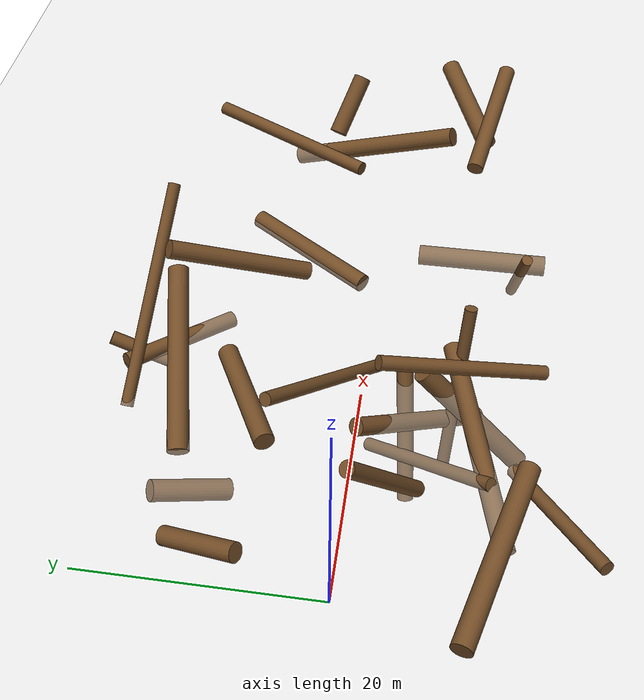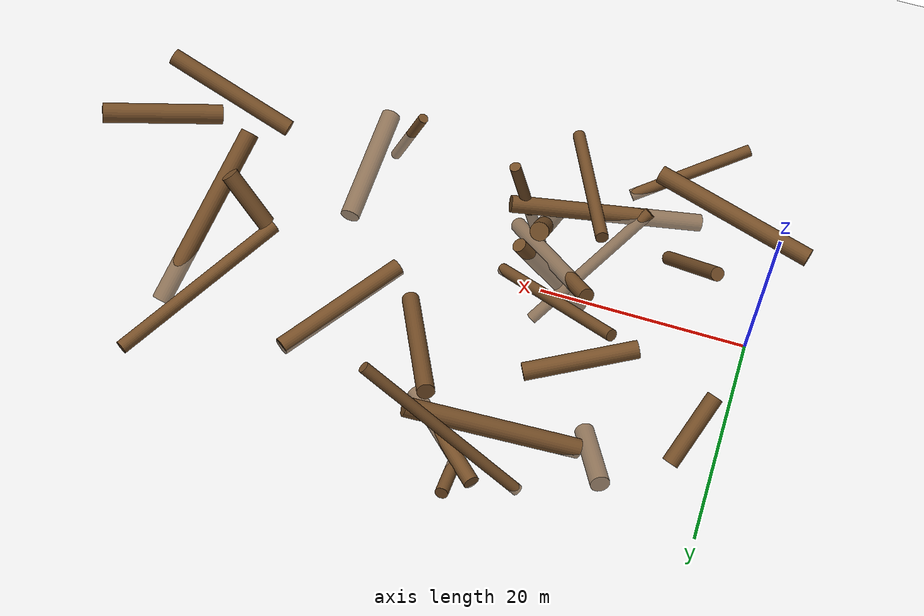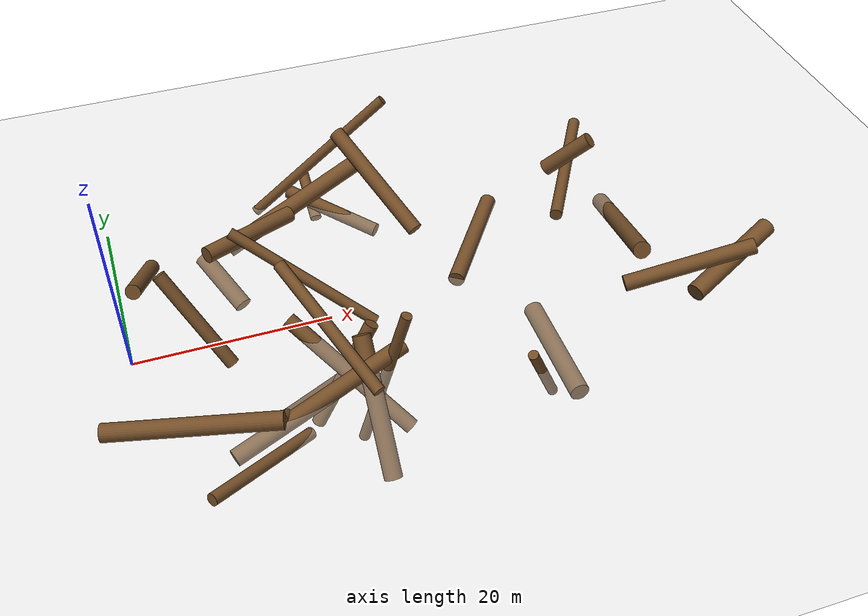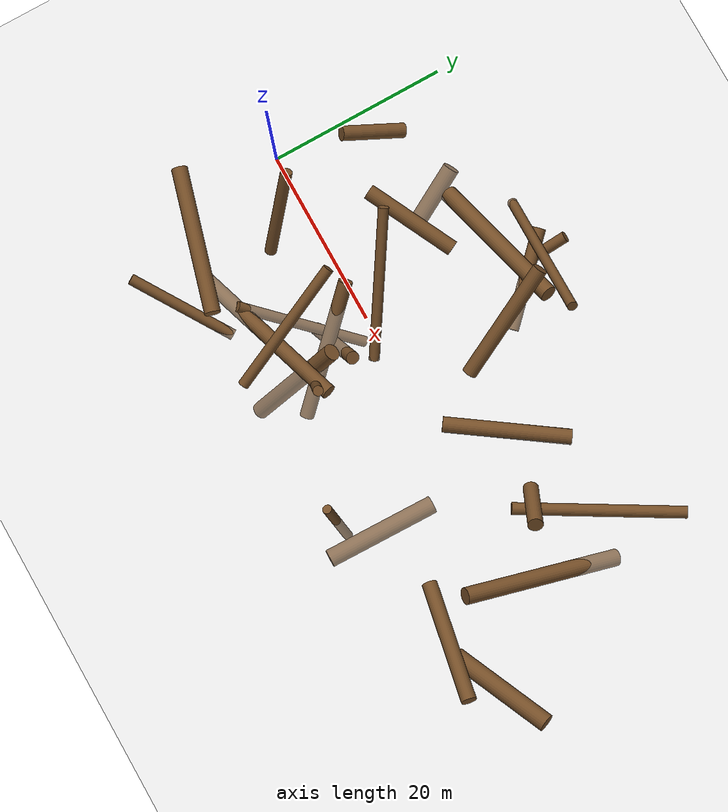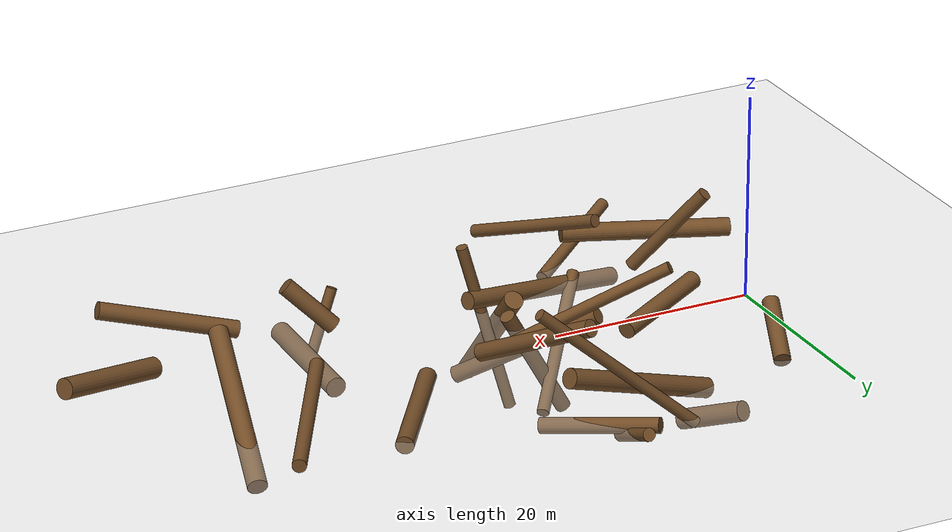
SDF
<sdf version='1.7'>
            <world name='default'>
                <light name='sun' type='directional'>
                <cast_shadows>1</cast_shadows>
                <pose>0 0 10 0 -0 0</pose>
                <diffuse>0.8 0.8 0.8 1</diffuse>
                <specular>0.2 0.2 0.2 1</specular>
                <attenuation>
                    <range>1000</range>
                    <constant>0.9</constant>
                    <linear>0.01</linear>
                    <quadratic>0.001</quadratic>
                </attenuation>
                <direction>-0.5 0.1 -0.9</direction>
                <spot>
                    <inner_angle>0</inner_angle>
                    <outer_angle>0</outer_angle>
                    <falloff>0</falloff>
                </spot>
                </light>
                <model name='ground_plane'>
                <static>1</static>
                <link name='link'>
                    <collision name='collision'>
                    <geometry>
                        <plane>
                        <normal>0 0 1</normal>
                        <size>100 100</size>
                        </plane>
                    </geometry>
                    <surface>
                        <contact>
                        <collide_bitmask>65535</collide_bitmask>
                        <ode/>
                        </contact>
                        <friction>
                        <ode>
                            <mu>100</mu>
                            <mu2>50</mu2>
                        </ode>
                        <torsional>
                            <ode/>
                        </torsional>
                        </friction>
                        <bounce/>
                    </surface>
                    <max_contacts>10</max_contacts>
                    </collision>
                    <visual name='visual'>
                    <cast_shadows>0</cast_shadows>
                    <geometry>
                        <plane>
                        <normal>0 0 1</normal>
                        <size>100 100</size>
                        </plane>
                    </geometry>
                    <material>
                        <script>
                        <uri>file://media/materials/scripts/gazebo.material</uri>
                        <name>Gazebo/Grey</name>
                        </script>
                    </material>
                    </visual>
                    <self_collide>0</self_collide>
                    <enable_wind>0</enable_wind>
                    <kinematic>0</kinematic>
                </link>
                </model>
                <gravity>0 0 -9.8</gravity>
                <magnetic_field>6e-06 2.3e-05 -4.2e-05</magnetic_field>
                <atmosphere type='adiabatic'/>
                <physics type='ode'>
                <max_step_size>0.001</max_step_size>
                <real_time_factor>1</real_time_factor>
                <real_time_update_rate>1000</real_time_update_rate>
                </physics>
                <scene>
                <ambient>0.4 0.4 0.4 1</ambient>
                <background>0.7 0.7 0.7 1</background>
                <shadows>1</shadows>
                </scene>
                <wind/>
                <spherical_coordinates>
                <surface_model>EARTH_WGS84</surface_model>
                <latitude_deg>0</latitude_deg>
                <longitude_deg>0</longitude_deg>
                <elevation>0</elevation>
                <heading_deg>0</heading_deg>
                </spherical_coordinates>
                <model name='cylinder_1'>
      <static>1</static>
      <link name='link'>
        <pose frame=''>0 0 0.1 0 -0 0</pose>
        <collision name='collision_trunk'>
          <pose frame=''>0 0 2 0 -0 0</pose>
          <geometry>
            <cylinder>
              <radius>0.7234155027060548</radius>
              <length>12.953335484031278</length>
            </cylinder>
          </geometry>
        </collision>
        <visual name='trunk'>
          <pose frame=''>0 0 2 0 -0 0</pose>
          <geometry>
            <cylinder>
              <radius>0.7234155027060548</radius>
              <length>12.953335484031278</length>
            </cylinder>
          </geometry>
          <material>
            <script>
              <uri>model://tree_simple/scripts</uri>
              <uri>model://tree_simple/materials/textures</uri>
              <name>TreeSimple/Trunk</name>
            </script>
          </material>
        </visual>
        <self_collide>0</self_collide>
        <kinematic>0</kinematic>
      </link>
      <pose frame=''>21.00890569150392 -3.8540450441753507 -2.452748434934044 179.40193449676843 6.713390166745805 145.38399994907243</pose>
    </model>
    <model name='cylinder_2'>
      <static>1</static>
      <link name='link'>
        <pose frame=''>0 0 0.1 0 -0 0</pose>
        <collision name='collision_trunk'>
          <pose frame=''>0 0 2 0 -0 0</pose>
          <geometry>
            <cylinder>
              <radius>0.5463211008207626</radius>
          <length>19.72344125594885</length>
            </cylinder>
          </geometry>
        </collision>
        <visual name='trunk'>
          <pose frame=''>0 0 2 0 -0 0</pose>
          <geometry>
            <cylinder>
              <radius>0.5463211008207626</radius>
          <length>19.72344125594885</length>
            </cylinder>
          </geometry>
          <material>
            <script>
              <uri>model://tree_simple/scripts</uri>
              <uri>model://tree_simple/materials/textures</uri>
              <name>TreeSimple/Trunk</name>
            </script>
          </material>
        </visual>
        <self_collide>0</self_collide>
        <kinematic>0</kinematic>
      </link>
      <pose frame=''>22.260879774332498 19.228296512568527 4.426406007162969 82.50864635077552 112.84905633284316 39.36330759619164</pose>
    </model>
    <model name='cylinder_3'>
      <static>1</static>
      <link name='link'>
        <pose frame=''>0 0 0.1 0 -0 0</pose>
        <collision name='collision_trunk'>
          <pose frame=''>0 0 2 0 -0 0</pose>
          <geometry>
            <cylinder>
              <radius>0.8548372484809255</radius>
          <length>13.836714031263158</length>
            </cylinder>
          </geometry>
        </collision>
        <visual name='trunk'>
          <pose frame=''>0 0 2 0 -0 0</pose>
          <geometry>
            <cylinder>
              <radius>0.8548372484809255</radius>
          <length>13.836714031263158</length>
            </cylinder>
          </geometry>
          <material>
            <script>
              <uri>model://tree_simple/scripts</uri>
              <uri>model://tree_simple/materials/textures</uri>
              <name>TreeSimple/Trunk</name>
            </script>
          </material>
        </visual>
        <self_collide>0</self_collide>
        <kinematic>0</kinematic>
      </link>
      <pose frame=''>36.64250599308923 5.46268080152149 -0.3139700257588771 10.530556120593776 168.09509218434886 62.689839005031466</pose>
    </model>
    <model name='cylinder_4'>
      <static>1</static>
      <link name='link'>
        <pose frame=''>0 0 0.1 0 -0 0</pose>
        <collision name='collision_trunk'>
          <pose frame=''>0 0 2 0 -0 0</pose>
          <geometry>
            <cylinder>
              <radius>0.8372644615964391</radius>
          <length>10.660292069473956</length>
            </cylinder>
          </geometry>
        </collision>
        <visual name='trunk'>
          <pose frame=''>0 0 2 0 -0 0</pose>
          <geometry>
            <cylinder>
              <radius>0.8372644615964391</radius>
          <length>10.660292069473956</length>
            </cylinder>
          </geometry>
          <material>
            <script>
              <uri>model://tree_simple/scripts</uri>
              <uri>model://tree_simple/materials/textures</uri>
              <name>TreeSimple/Trunk</name>
            </script>
          </material>
        </visual>
        <self_collide>0</self_collide>
        <kinematic>0</kinematic>
      </link>
      <pose frame=''>12.147911141525556 7.806554635595035 5.887780755355497 1.3665843606842576 140.27885040185998 177.78907209854697</pose>
    </model>
    <model name='cylinder_5'>
      <static>1</static>
      <link name='link'>
        <pose frame=''>0 0 0.1 0 -0 0</pose>
        <collision name='collision_trunk'>
          <pose frame=''>0 0 2 0 -0 0</pose>
          <geometry>
            <cylinder>
              <radius>0.8136404943272095</radius>
          <length>13.717900842669058</length>
            </cylinder>
          </geometry>
        </collision>
        <visual name='trunk'>
          <pose frame=''>0 0 2 0 -0 0</pose>
          <geometry>
            <cylinder>
              <radius>0.8136404943272095</radius>
          <length>13.717900842669058</length>
            </cylinder>
          </geometry>
          <material>
            <script>
              <uri>model://tree_simple/scripts</uri>
              <uri>model://tree_simple/materials/textures</uri>
              <name>TreeSimple/Trunk</name>
            </script>
          </material>
        </visual>
        <self_collide>0</self_collide>
        <kinematic>0</kinematic>
      </link>
      <pose frame=''>29.17679377202698 10.214248319443463 5.626295740561044 95.35639657603629 75.56297226275164 148.007070265567</pose>
    </model>
    <model name='cylinder_6'>
      <static>1</static>
      <link name='link'>
        <pose frame=''>0 0 0.1 0 -0 0</pose>
        <collision name='collision_trunk'>
          <pose frame=''>0 0 2 0 -0 0</pose>
          <geometry>
            <cylinder>
              <radius>0.5740356762607992</radius>
          <length>17.074315162700493</length>
            </cylinder>
          </geometry>
        </collision>
        <visual name='trunk'>
          <pose frame=''>0 0 2 0 -0 0</pose>
          <geometry>
            <cylinder>
              <radius>0.5740356762607992</radius>
          <length>17.074315162700493</length>
            </cylinder>
          </geometry>
          <material>
            <script>
              <uri>model://tree_simple/scripts</uri>
              <uri>model://tree_simple/materials/textures</uri>
              <name>TreeSimple/Trunk</name>
            </script>
          </material>
        </visual>
        <self_collide>0</self_collide>
        <kinematic>0</kinematic>
      </link>
      <pose frame=''>19.55518000020775 1.6406785002902282 2.73616901973152 24.67764018920356 88.9408962370074 140.25625328804824</pose>
    </model>
    <model name='cylinder_7'>
      <static>1</static>
      <link name='link'>
        <pose frame=''>0 0 0.1 0 -0 0</pose>
        <collision name='collision_trunk'>
          <pose frame=''>0 0 2 0 -0 0</pose>
          <geometry>
            <cylinder>
              <radius>0.9837575898541788</radius>
          <length>11.848767915918737</length>
            </cylinder>
          </geometry>
        </collision>
        <visual name='trunk'>
          <pose frame=''>0 0 2 0 -0 0</pose>
          <geometry>
            <cylinder>
              <radius>0.9837575898541788</radius>
          <length>11.848767915918737</length>
            </cylinder>
          </geometry>
          <material>
            <script>
              <uri>model://tree_simple/scripts</uri>
              <uri>model://tree_simple/materials/textures</uri>
              <name>TreeSimple/Trunk</name>
            </script>
          </material>
        </visual>
        <self_collide>0</self_collide>
        <kinematic>0</kinematic>
      </link>
      <pose frame=''>59.49698375650257 -7.828150063693542 1.4451402822248314 122.72206881245975 155.31437152318972 94.4577532181646</pose>
    </model>
    <model name='cylinder_8'>
      <static>1</static>
      <link name='link'>
        <pose frame=''>0 0 0.1 0 -0 0</pose>
        <collision name='collision_trunk'>
          <pose frame=''>0 0 2 0 -0 0</pose>
          <geometry>
            <cylinder>
              <radius>0.5554700841788502</radius>
          <length>17.4701878345913</length>
            </cylinder>
          </geometry>
        </collision>
        <visual name='trunk'>
          <pose frame=''>0 0 2 0 -0 0</pose>
          <geometry>
            <cylinder>
              <radius>0.5554700841788502</radius>
          <length>17.4701878345913</length>
            </cylinder>
          </geometry>
          <material>
            <script>
              <uri>model://tree_simple/scripts</uri>
              <uri>model://tree_simple/materials/textures</uri>
              <name>TreeSimple/Trunk</name>
            </script>
          </material>
        </visual>
        <self_collide>0</self_collide>
        <kinematic>0</kinematic>
      </link>
      <pose frame=''>23.561995869229783 -8.262091291026582 0.20650865820312703 157.24008711166493 103.4524652341211 91.54772643628786</pose>
    </model>
    <model name='cylinder_9'>
      <static>1</static>
      <link name='link'>
        <pose frame=''>0 0 0.1 0 -0 0</pose>
        <collision name='collision_trunk'>
          <pose frame=''>0 0 2 0 -0 0</pose>
          <geometry>
            <cylinder>
              <radius>0.9188122893514199</radius>
          <length>18.39236461387587</length>
            </cylinder>
          </geometry>
        </collision>
        <visual name='trunk'>
          <pose frame=''>0 0 2 0 -0 0</pose>
          <geometry>
            <cylinder>
              <radius>0.9188122893514199</radius>
          <length>18.39236461387587</length>
            </cylinder>
          </geometry>
          <material>
            <script>
              <uri>model://tree_simple/scripts</uri>
              <uri>model://tree_simple/materials/textures</uri>
              <name>TreeSimple/Trunk</name>
            </script>
          </material>
        </visual>
        <self_collide>0</self_collide>
        <kinematic>0</kinematic>
      </link>
      <pose frame=''>52.76856698292442 0.6914563560302724 2.0725907446487923 30.30159236913555 66.44669422694471 150.3458502322632</pose>
    </model>
    <model name='cylinder_10'>
      <static>1</static>
      <link name='link'>
        <pose frame=''>0 0 0.1 0 -0 0</pose>
        <collision name='collision_trunk'>
          <pose frame=''>0 0 2 0 -0 0</pose>
          <geometry>
            <cylinder>
              <radius>0.5143967297363823</radius>
          <length>7.49103626970534</length>
            </cylinder>
          </geometry>
        </collision>
        <visual name='trunk'>
          <pose frame=''>0 0 2 0 -0 0</pose>
          <geometry>
            <cylinder>
              <radius>0.5143967297363823</radius>
          <length>7.49103626970534</length>
            </cylinder>
          </geometry>
          <material>
            <script>
              <uri>model://tree_simple/scripts</uri>
              <uri>model://tree_simple/materials/textures</uri>
              <name>TreeSimple/Trunk</name>
            </script>
          </material>
        </visual>
        <self_collide>0</self_collide>
        <kinematic>0</kinematic>
      </link>
      <pose frame=''>36.791145000375245 -13.519492359314329 1.1717389268772642 37.68061656104173 134.68648929647705 37.91556403053179</pose>
    </model>
    <model name='cylinder_11'>
      <static>1</static>
      <link name='link'>
        <pose frame=''>0 0 0.1 0 -0 0</pose>
        <collision name='collision_trunk'>
          <pose frame=''>0 0 2 0 -0 0</pose>
          <geometry>
            <cylinder>
              <radius>0.9341561928620075</radius>
          <length>7.1965019870656715</length>
            </cylinder>
          </geometry>
        </collision>
        <visual name='trunk'>
          <pose frame=''>0 0 2 0 -0 0</pose>
          <geometry>
            <cylinder>
              <radius>0.9341561928620075</radius>
          <length>7.1965019870656715</length>
            </cylinder>
          </geometry>
          <material>
            <script>
              <uri>model://tree_simple/scripts</uri>
              <uri>model://tree_simple/materials/textures</uri>
              <name>TreeSimple/Trunk</name>
            </script>
          </material>
        </visual>
        <self_collide>0</self_collide>
        <kinematic>0</kinematic>
      </link>
      <pose frame=''>11.822282738295794 11.677256509005613 -4.901461953933006 11.45374547860152 81.1860040803771 0.23128169209278626</pose>
    </model>
        <model name='cylinder_12'>
      <static>1</static>
      <link name='link'>
        <pose frame=''>0 0 0.1 0 -0 0</pose>
        <collision name='collision_trunk'>
          <pose frame=''>0 0 2 0 -0 0</pose>
          <geometry>
            <cylinder>
              <radius>0.9346051750616886</radius>
          <length>16.987459908296117</length>
            </cylinder>
          </geometry>
        </collision>
        <visual name='trunk'>
          <pose frame=''>0 0 2 0 -0 0</pose>
          <geometry>
            <cylinder>
              <radius>0.9346051750616886</radius>
          <length>16.987459908296117</length>
            </cylinder>
          </geometry>
          <material>
            <script>
              <uri>model://tree_simple/scripts</uri>
              <uri>model://tree_simple/materials/textures</uri>
              <name>TreeSimple/Trunk</name>
            </script>
          </material>
        </visual>
        <self_collide>0</self_collide>
        <kinematic>0</kinematic>
      </link>
      <pose frame=''>18.124600155564007 15.626248368997267 1.5725274537402054 105.66614568244384 63.435750010407006 155.956871140757</pose>
    </model>
    <model name='cylinder_13'>
      <static>1</static>
      <link name='link'>
        <pose frame=''>0 0 0.1 0 -0 0</pose>
        <collision name='collision_trunk'>
          <pose frame=''>0 0 2 0 -0 0</pose>
          <geometry>
            <cylinder>
              <radius>0.5887399395130926</radius>
          <length>15.923410700129274</length>
            </cylinder>
          </geometry>
        </collision>
        <visual name='trunk'>
          <pose frame=''>0 0 2 0 -0 0</pose>
          <geometry>
            <cylinder>
              <radius>0.5887399395130926</radius>
          <length>15.923410700129274</length>
            </cylinder>
          </geometry>
          <material>
            <script>
              <uri>model://tree_simple/scripts</uri>
              <uri>model://tree_simple/materials/textures</uri>
              <name>TreeSimple/Trunk</name>
            </script>
          </material>
        </visual>
        <self_collide>0</self_collide>
        <kinematic>0</kinematic>
      </link>
      <pose frame=''>15.328521387803855 -7.524950430584848 -2.865817952151349 128.8016254062932 17.808324112637624 101.41964194315048</pose>
    </model>
    <model name='cylinder_14'>
      <static>1</static>
      <link name='link'>
        <pose frame=''>0 0 0.1 0 -0 0</pose>
        <collision name='collision_trunk'>
          <pose frame=''>0 0 2 0 -0 0</pose>
          <geometry>
            <cylinder>
              <radius>0.9634321185642489</radius>
          <length>12.372575877917324</length>
            </cylinder>
          </geometry>
        </collision>
        <visual name='trunk'>
          <pose frame=''>0 0 2 0 -0 0</pose>
          <geometry>
            <cylinder>
              <radius>0.9634321185642489</radius>
          <length>12.372575877917324</length>
            </cylinder>
          </geometry>
          <material>
            <script>
              <uri>model://tree_simple/scripts</uri>
              <uri>model://tree_simple/materials/textures</uri>
              <name>TreeSimple/Trunk</name>
            </script>
          </material>
        </visual>
        <self_collide>0</self_collide>
        <kinematic>0</kinematic>
      </link>
      <pose frame=''>40.507344407221964 -11.790703241551928 -1.9474148703616794 122.04498629502265 39.2436026677681 67.04755523141449</pose>
    </model>
    <model name='cylinder_15'>
      <static>1</static>
      <link name='link'>
        <pose frame=''>0 0 0.1 0 -0 0</pose>
        <collision name='collision_trunk'>
          <pose frame=''>0 0 2 0 -0 0</pose>
          <geometry>
            <cylinder>
              <radius>0.9347863815026418</radius>
          <length>14.522412315882603</length>
            </cylinder>
          </geometry>
        </collision>
        <visual name='trunk'>
          <pose frame=''>0 0 2 0 -0 0</pose>
          <geometry>
            <cylinder>
              <radius>0.9347863815026418</radius>
          <length>14.522412315882603</length>
            </cylinder>
          </geometry>
          <material>
            <script>
              <uri>model://tree_simple/scripts</uri>
              <uri>model://tree_simple/materials/textures</uri>
              <name>TreeSimple/Trunk</name>
            </script>
          </material>
        </visual>
        <self_collide>0</self_collide>
        <kinematic>0</kinematic>
      </link>
      <pose frame=''>21.714453053728786 -8.446535591358245 -2.0182236539156895 140.74613693226587 56.886213009138714 31.85305437194457</pose>
    </model>
    <model name='cylinder_26'>
  <static>1</static>
  <link name='link'>
    <pose frame=''>0 0 0.1 0 -0 0</pose>
    <collision name='collision_trunk'>
      <pose frame=''>0 0 2 0 -0 0</pose>
      <geometry>
        <cylinder>
          <radius>0.8082614125</radius>
          <length>5.7527804043</length>
        </cylinder>
      </geometry>
    </collision>
    <visual name='trunk'>
      <pose frame=''>0 0 2 0 -0 0</pose>
      <geometry>
        <cylinder>
          <radius>0.8082614125</radius>
          <length>5.7527804043</length>
        </cylinder>
      </geometry>
      <material>
        <script>
          <uri>model://tree_simple/scripts</uri>
          <uri>model://tree_simple/materials/textures</uri>
          <name>TreeSimple/Trunk</name>
        </script>
      </material>
    </visual>
    <self_collide>0</self_collide>
    <kinematic>0</kinematic>
  </link>
  <pose frame=''>45.5922126692 5.1973296119 9.3598508087 228.8782799465 261.4639619685 31.6188489367</pose>
</model>

<model name='cylinder_27'>
  <static>1</static>
  <link name='link'>
    <pose frame=''>0 0 0.1 0 -0 0</pose>
    <collision name='collision_trunk'>
      <pose frame=''>0 0 2 0 -0 0</pose>
      <geometry>
        <cylinder>
          <radius>0.5938813088</radius>
          <length>12.4257553003</length>
        </cylinder>
      </geometry>
    </collision>
    <visual name='trunk'>
      <pose frame=''>0 0 2 0 -0 0</pose>
      <geometry>
        <cylinder>
          <radius>0.5938813088</radius>
          <length>12.4257553003</length>
        </cylinder>
      </geometry>
      <material>
        <script>
          <uri>model://tree_simple/scripts</uri>
          <uri>model://tree_simple/materials/textures</uri>
          <name>TreeSimple/Trunk</name>
        </script>
      </material>
    </visual>
    <self_collide>0</self_collide>
    <kinematic>0</kinematic>
  </link>
  <pose frame=''>11.1143236876 -15.4972969867 0.2875334377 2.5885441338 259.4627330534 56.5652363604</pose>
</model>

<model name='cylinder_28'>
  <static>1</static>
  <link name='link'>
    <pose frame=''>0 0 0.1 0 -0 0</pose>
    <collision name='collision_trunk'>
      <pose frame=''>0 0 2 0 -0 0</pose>
      <geometry>
        <cylinder>
          <radius>0.8198904509</radius>
          <length>13.3279643301</length>
        </cylinder>
      </geometry>
    </collision>
    <visual name='trunk'>
      <pose frame=''>0 0 2 0 -0 0</pose>
      <geometry>
        <cylinder>
          <radius>0.8198904509</radius>
          <length>13.3279643301</length>
        </cylinder>
      </geometry>
      <material>
        <script>
          <uri>model://tree_simple/scripts</uri>
          <uri>model://tree_simple/materials/textures</uri>
          <name>TreeSimple/Trunk</name>
        </script>
      </material>
    </visual>
    <self_collide>0</self_collide>
    <kinematic>0</kinematic>
  </link>
  <pose frame=''>56.5566045684 -9.8208134591 5.6745506238 246.0928018572 203.1900472109 148.5765754322</pose>
</model>

<model name='cylinder_29'>
  <static>1</static>
  <link name='link'>
    <pose frame=''>0 0 0.1 0 -0 0</pose>
    <collision name='collision_trunk'>
      <pose frame=''>0 0 2 0 -0 0</pose>
      <geometry>
        <cylinder>
          <radius>0.7426379481</radius>
          <length>11.2525352981</length>
        </cylinder>
      </geometry>
    </collision>
    <visual name='trunk'>
      <pose frame=''>0 0 2 0 -0 0</pose>
      <geometry>
        <cylinder>
          <radius>0.7426379481</radius>
          <length>11.2525352981</length>
        </cylinder>
      </geometry>
      <material>
        <script>
          <uri>model://tree_simple/scripts</uri>
          <uri>model://tree_simple/materials/textures</uri>
          <name>TreeSimple/Trunk</name>
        </script>
      </material>
    </visual>
    <self_collide>0</self_collide>
    <kinematic>0</kinematic>
  </link>
  <pose frame=''>23.0125127207 18.4869310199 -0.1416712246 339.111561029 312.4343096709 341.8397243233</pose>
</model>

<model name='cylinder_30'>
  <static>1</static>
  <link name='link'>
    <pose frame=''>0 0 0.1 0 -0 0</pose>
    <collision name='collision_trunk'>
      <pose frame=''>0 0 2 0 -0 0</pose>
      <geometry>
        <cylinder>
          <radius>0.6468525641</radius>
          <length>10.807517157</length>
        </cylinder>
      </geometry>
    </collision>
    <visual name='trunk'>
      <pose frame=''>0 0 2 0 -0 0</pose>
      <geometry>
        <cylinder>
          <radius>0.6468525641</radius>
          <length>10.807517157</length>
        </cylinder>
      </geometry>
      <material>
        <script>
          <uri>model://tree_simple/scripts</uri>
          <uri>model://tree_simple/materials/textures</uri>
          <name>TreeSimple/Trunk</name>
        </script>
      </material>
    </visual>
    <self_collide>0</self_collide>
    <kinematic>0</kinematic>
  </link>
  <pose frame=''>7.6304654041 -4.0423171289 5.2238907384 62.6113473487 300.9244869567 213.1703035341</pose>
</model>

<model name='cylinder_31'>
  <static>1</static>
  <link name='link'>
    <pose frame=''>0 0 0.1 0 -0 0</pose>
    <collision name='collision_trunk'>
      <pose frame=''>0 0 2 0 -0 0</pose>
      <geometry>
        <cylinder>
          <radius>0.6527792243</radius>
          <length>18.4145687807</length>
        </cylinder>
      </geometry>
    </collision>
    <visual name='trunk'>
      <pose frame=''>0 0 2 0 -0 0</pose>
      <geometry>
        <cylinder>
          <radius>0.6527792243</radius>
          <length>18.4145687807</length>
        </cylinder>
      </geometry>
      <material>
        <script>
          <uri>model://tree_simple/scripts</uri>
          <uri>model://tree_simple/materials/textures</uri>
          <name>TreeSimple/Trunk</name>
        </script>
      </material>
    </visual>
    <self_collide>0</self_collide>
    <kinematic>0</kinematic>
  </link>
  <pose frame=''>51.3119872125 12.8458531123 3.6545190977 236.9893289474 221.7061315814 102.94980269</pose>
</model>

<model name='cylinder_32'>
  <static>1</static>
  <link name='link'>
    <pose frame=''>0 0 0.1 0 -0 0</pose>
    <collision name='collision_trunk'>
      <pose frame=''>0 0 2 0 -0 0</pose>
      <geometry>
        <cylinder>
          <radius>0.6010447712</radius>
          <length>15.4716395753</length>
        </cylinder>
      </geometry>
    </collision>
    <visual name='trunk'>
      <pose frame=''>0 0 2 0 -0 0</pose>
      <geometry>
        <cylinder>
          <radius>0.6010447712</radius>
          <length>15.4716395753</length>
        </cylinder>
      </geometry>
      <material>
        <script>
          <uri>model://tree_simple/scripts</uri>
          <uri>model://tree_simple/materials/textures</uri>
          <name>TreeSimple/Trunk</name>
        </script>
      </material>
    </visual>
    <self_collide>0</self_collide>
    <kinematic>0</kinematic>
  </link>
  <pose frame=''>18.6538757857 -10.1752292959 6.642277517 265.1058216015 288.8457828541 104.1294791462</pose>
</model>

<model name='cylinder_33'>
  <static>1</static>
  <link name='link'>
    <pose frame=''>0 0 0.1 0 -0 0</pose>
    <collision name='collision_trunk'>
      <pose frame=''>0 0 2 0 -0 0</pose>
      <geometry>
        <cylinder>
          <radius>0.8816583188</radius>
          <length>16.3183505384</length>
        </cylinder>
      </geometry>
    </collision>
    <visual name='trunk'>
      <pose frame=''>0 0 2 0 -0 0</pose>
      <geometry>
        <cylinder>
          <radius>0.8816583188</radius>
          <length>16.3183505384</length>
        </cylinder>
      </geometry>
      <material>
        <script>
          <uri>model://tree_simple/scripts</uri>
          <uri>model://tree_simple/materials/textures</uri>
          <name>TreeSimple/Trunk</name>
        </script>
      </material>
    </visual>
    <self_collide>0</self_collide>
    <kinematic>0</kinematic>
  </link>
  <pose frame=''>6.2348462043 -12.517338013 2.8131722738 156.9265308878 309.4920473595 254.0402169491</pose>
</model>

<model name='cylinder_34'>
  <static>1</static>
  <link name='link'>
    <pose frame=''>0 0 0.1 0 -0 0</pose>
    <collision name='collision_trunk'>
      <pose frame=''>0 0 2 0 -0 0</pose>
      <geometry>
        <cylinder>
          <radius>0.7943056191</radius>
          <length>16.3655759338</length>
        </cylinder>
      </geometry>
    </collision>
    <visual name='trunk'>
      <pose frame=''>0 0 2 0 -0 0</pose>
      <geometry>
        <cylinder>
          <radius>0.7943056191</radius>
          <length>16.3655759338</length>
        </cylinder>
      </geometry>
      <material>
        <script>
          <uri>model://tree_simple/scripts</uri>
          <uri>model://tree_simple/materials/textures</uri>
          <name>TreeSimple/Trunk</name>
        </script>
      </material>
    </visual>
    <self_collide>0</self_collide>
    <kinematic>0</kinematic>
  </link>
  <pose frame=''>19.0831403568 -3.9042172432 -1.9487327465 277.0996944252 297.5794978816 56.4913290796</pose>
</model>

<model name='cylinder_35'>
  <static>1</static>
  <link name='link'>
    <pose frame=''>0 0 0.1 0 -0 0</pose>
    <collision name='collision_trunk'>
      <pose frame=''>0 0 2 0 -0 0</pose>
      <geometry>
        <cylinder>
          <radius>0.6170198442</radius>
          <length>5.7857712393</length>
        </cylinder>
      </geometry>
    </collision>
    <visual name='trunk'>
      <pose frame=''>0 0 2 0 -0 0</pose>
      <geometry>
        <cylinder>
          <radius>0.6170198442</radius>
          <length>5.7857712393</length>
        </cylinder>
      </geometry>
      <material>
        <script>
          <uri>model://tree_simple/scripts</uri>
          <uri>model://tree_simple/materials/textures</uri>
          <name>TreeSimple/Trunk</name>
        </script>
      </material>
    </visual>
    <self_collide>0</self_collide>
    <kinematic>0</kinematic>
  </link>
  <pose frame=''>22.7334619388 18.3121723177 -1.1966649078 162.8099609332 227.2697672236 101.4853173526</pose>
</model>

<model name='cylinder_36'>
  <static>1</static>
  <link name='link'>
    <pose frame=''>0 0 0.1 0 -0 0</pose>
    <collision name='collision_trunk'>
      <pose frame=''>0 0 2 0 -0 0</pose>
      <geometry>
        <cylinder>
          <radius>0.8458606154</radius>
          <length>19.1683017687</length>
        </cylinder>
      </geometry>
    </collision>
    <visual name='trunk'>
      <pose frame=''>0 0 2 0 -0 0</pose>
      <geometry>
        <cylinder>
          <radius>0.8458606154</radius>
          <length>19.1683017687</length>
        </cylinder>
      </geometry>
      <material>
        <script>
          <uri>model://tree_simple/scripts</uri>
          <uri>model://tree_simple/materials/textures</uri>
          <name>TreeSimple/Trunk</name>
        </script>
      </material>
    </visual>
    <self_collide>0</self_collide>
    <kinematic>0</kinematic>
  </link>
  <pose frame=''>14.2608169896 -10.8143584382 -0.512158446 4.5226123165 197.644534632 356.8137705417</pose>
</model>

<model name='cylinder_37'>
  <static>1</static>
  <link name='link'>
    <pose frame=''>0 0 0.1 0 -0 0</pose>
    <collision name='collision_trunk'>
      <pose frame=''>0 0 2 0 -0 0</pose>
      <geometry>
        <cylinder>
          <radius>0.8060231778</radius>
          <length>7.313359608</length>
        </cylinder>
      </geometry>
    </collision>
    <visual name='trunk'>
      <pose frame=''>0 0 2 0 -0 0</pose>
      <geometry>
        <cylinder>
          <radius>0.8060231778</radius>
          <length>7.313359608</length>
        </cylinder>
      </geometry>
      <material>
        <script>
          <uri>model://tree_simple/scripts</uri>
          <uri>model://tree_simple/materials/textures</uri>
          <name>TreeSimple/Trunk</name>
        </script>
      </material>
    </visual>
    <self_collide>0</self_collide>
    <kinematic>0</kinematic>
  </link>
  <pose frame=''>2.0248571705 8.5827244391 2.1356723641 297.2677360107 150.7585376813 46.7560347797</pose>
</model>
            </world>
            </sdf>
